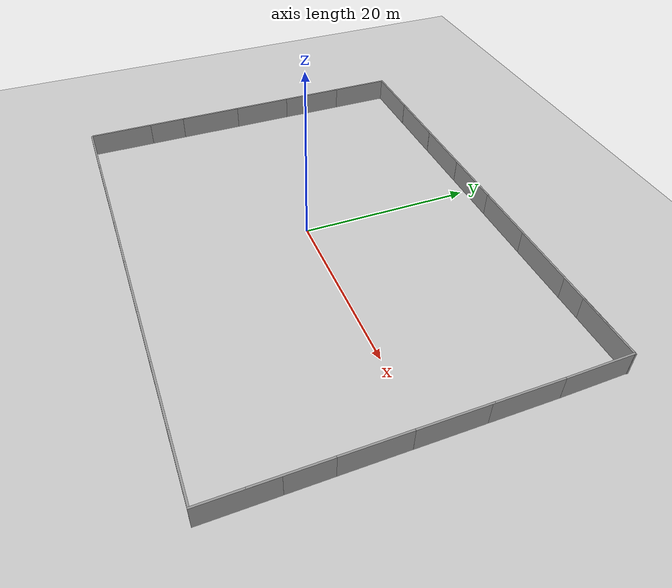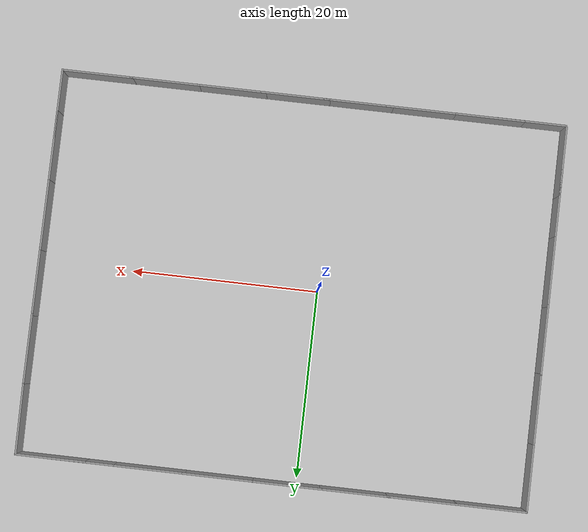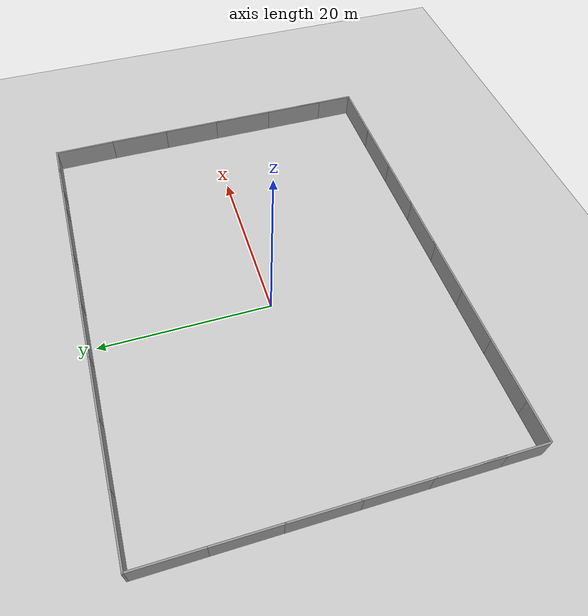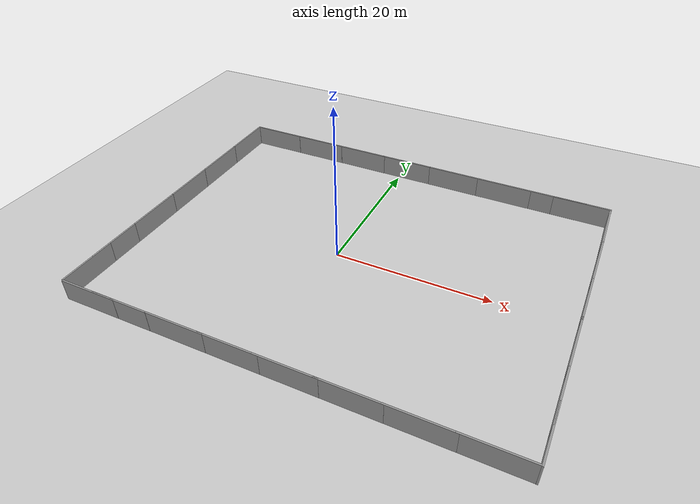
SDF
<sdf version="1.6">
 <world name="default">
  <light name="sun" type="directional">
   <pose>0 0 10 0 -0 0</pose>
   <diffuse>0.8 0.8 0.8 1</diffuse>
   <specular>0.2 0.2 0.2 1</specular>
   <attenuation>
    <range>1000</range>
    <constant>0.9</constant>
    <linear>0.01</linear>
    <quadratic>0.001</quadratic>
   </attenuation>
   <direction>-0.5 0.1 -0.9</direction>
  </light>
  <model name="ground_plane">
   <static>1</static>
   <link name="link">
    <collision name="collision">
     <geometry><plane><normal>0 0 1</normal><size>57 45</size></plane></geometry>
     <surface><friction><ode><mu>100</mu><mu2>50</mu2></ode></friction></surface>
    </collision>
    <visual name="visual">
     <cast_shadows>0</cast_shadows>
     <geometry><plane><normal>0 0 1</normal><size>57 45</size></plane></geometry>
     <material>
      <script><uri>file://media/materials/scripts/gazebo.material</uri><name>Gazebo/Grey</name></script>
     </material>
    </visual>
   </link>
  </model>
  <gravity>0 0 -9.8</gravity>
  <magnetic_field>6e-06 2.3e-05 -4.2e-05</magnetic_field>
  <atmosphere type="adiabatic"/>
  <physics name="default_physics" default="0" type="ode">
   <max_step_size>0.001</max_step_size>
   <real_time_factor>1</real_time_factor>
   <real_time_update_rate>1000</real_time_update_rate>
  </physics>
  <scene><ambient>0.4 0.4 0.4 1</ambient><background>0.7 0.7 0.7 1</background><shadows>1</shadows></scene>
  <audio><device>default</device></audio>
  <spherical_coordinates>
   <surface_model>EARTH_WGS84</surface_model>
   <latitude_deg>0</latitude_deg>
   <longitude_deg>0</longitude_deg>
   <elevation>0</elevation>
   <heading_deg>0</heading_deg>
  </spherical_coordinates>
  <model name="grey_wall_clone_5_clone_10_clone_clone">
   <static>1</static>
   <link name="link">
    <pose>0 0 1.4 0 -0 0</pose>
    <collision name="collision"><geometry><box><size>7.5 0.2 2.8</size></box></geometry></collision>
    <visual name="visual">
     <cast_shadows>0</cast_shadows>
     <geometry><box><size>7.5 0.2 2.8</size></box></geometry>
     <material>
      <script>
       <uri>model://grey_wall/materials/scripts</uri>
       <uri>model://grey_wall/materials/textures</uri>
       <name>vrc/grey_wall</name>
      </script>
     </material>
    </visual>
   </link>
   <pose>29.6385 16.8823 0 0 0 -1.55831</pose>
  </model>
  <model name="grey_wall_clone_2_clone_0_clone_7_clone">
   <static>1</static>
   <link name="link">
    <pose>0 0 1.4 0 -0 0</pose>
    <collision name="collision"><geometry><box><size>7.5 0.2 2.8</size></box></geometry></collision>
    <visual name="visual">
     <cast_shadows>0</cast_shadows>
     <geometry><box><size>7.5 0.2 2.8</size></box></geometry>
     <material>
      <script>
       <uri>model://grey_wall/materials/scripts</uri>
       <uri>model://grey_wall/materials/textures</uri>
       <name>vrc/grey_wall</name>
      </script>
     </material>
    </visual>
   </link>
   <pose>-24.3511 16.9559 0 0 0 -1.57184</pose>
  </model>
  <model name="grey_wall_clone_2_clone_0_clone_7_clone_clone">
   <static>1</static>
   <link name="link">
    <pose>0 0 1.4 0 -0 0</pose>
    <collision name="collision"><geometry><box><size>7.5 0.2 2.8</size></box></geometry></collision>
    <visual name="visual">
     <cast_shadows>0</cast_shadows>
     <geometry><box><size>7.5 0.2 2.8</size></box></geometry>
     <material>
      <script>
       <uri>model://grey_wall/materials/scripts</uri>
       <uri>model://grey_wall/materials/textures</uri>
       <name>vrc/grey_wall</name>
      </script>
     </material>
    </visual>
   </link>
   <pose>-24.3554 9.76054 0 0 0 -1.57184</pose>
  </model>
  <model name="grey_wall_clone_2_clone_0_clone_7_clone_clone_0">
   <static>1</static>
   <link name="link">
    <pose>0 0 1.4 0 -0 0</pose>
    <collision name="collision"><geometry><box><size>7.5 0.2 2.8</size></box></geometry></collision>
    <visual name="visual">
     <cast_shadows>0</cast_shadows>
     <geometry><box><size>7.5 0.2 2.8</size></box></geometry>
     <material>
      <script>
       <uri>model://grey_wall/materials/scripts</uri>
       <uri>model://grey_wall/materials/textures</uri>
       <name>vrc/grey_wall</name>
      </script>
     </material>
    </visual>
   </link>
   <pose>-24.3635 2.44672 0 0 0 -1.57184</pose>
  </model>
  <model name="grey_wall_clone_2_clone_0_clone_7_clone_clone_1">
   <static>1</static>
   <link name="link">
    <pose>0 0 1.4 0 -0 0</pose>
    <collision name="collision"><geometry><box><size>7.5 0.2 2.8</size></box></geometry></collision>
    <visual name="visual">
     <cast_shadows>0</cast_shadows>
     <geometry><box><size>7.5 0.2 2.8</size></box></geometry>
     <material>
      <script>
       <uri>model://grey_wall/materials/scripts</uri>
       <uri>model://grey_wall/materials/textures</uri>
       <name>vrc/grey_wall</name>
      </script>
     </material>
    </visual>
   </link>
   <pose>-24.3662 -4.79993 0 0 0 -1.57184</pose>
  </model>
  <model name="grey_wall_clone_2_clone_0_clone_7_clone_clone_2">
   <static>1</static>
   <link name="link">
    <pose>0 0 1.4 0 -0 0</pose>
    <collision name="collision"><geometry><box><size>7.5 0.2 2.8</size></box></geometry></collision>
    <visual name="visual">
     <cast_shadows>0</cast_shadows>
     <geometry><box><size>7.5 0.2 2.8</size></box></geometry>
     <material>
      <script>
       <uri>model://grey_wall/materials/scripts</uri>
       <uri>model://grey_wall/materials/textures</uri>
       <name>vrc/grey_wall</name>
      </script>
     </material>
    </visual>
   </link>
   <pose>-24.3746 -12.0057 0 0 0 -1.57184</pose>
  </model>
  <model name="grey_wall_clone_2_clone_0_clone_7_clone_clone_3">
   <static>1</static>
   <link name="link">
    <pose>0 0 1.4 0 -0 0</pose>
    <collision name="collision"><geometry><box><size>7.5 0.2 2.8</size></box></geometry></collision>
    <visual name="visual">
     <cast_shadows>0</cast_shadows>
     <geometry><box><size>7.5 0.2 2.8</size></box></geometry>
     <material>
      <script>
       <uri>model://grey_wall/materials/scripts</uri>
       <uri>model://grey_wall/materials/textures</uri>
       <name>vrc/grey_wall</name>
      </script>
     </material>
    </visual>
   </link>
   <pose>-24.3717 -16.6416 0 0 0 -1.57184</pose>
  </model>
  <model name="grey_wall_clone_0_clone">
   <static>1</static>
   <link name="link">
    <pose>0 0 1.4 0 -0 0</pose>
    <collision name="collision"><geometry><box><size>7.5 0.2 2.8</size></box></geometry></collision>
    <visual name="visual">
     <cast_shadows>0</cast_shadows>
     <geometry><box><size>7.5 0.2 2.8</size></box></geometry>
     <material>
      <script>
       <uri>model://grey_wall/materials/scripts</uri>
       <uri>model://grey_wall/materials/textures</uri>
       <name>vrc/grey_wall</name>
      </script>
     </material>
    </visual>
   </link>
   <pose>-20.7018 20.5969 0 0 -0 0</pose>
  </model>
  <model name="grey_wall_clone_0_clone_0">
   <static>1</static>
   <link name="link">
    <pose>0 0 1.4 0 -0 0</pose>
    <collision name="collision"><geometry><box><size>7.5 0.2 2.8</size></box></geometry></collision>
    <visual name="visual">
     <cast_shadows>0</cast_shadows>
     <geometry><box><size>7.5 0.2 2.8</size></box></geometry>
     <material>
      <script>
       <uri>model://grey_wall/materials/scripts</uri>
       <uri>model://grey_wall/materials/textures</uri>
       <name>vrc/grey_wall</name>
      </script>
     </material>
    </visual>
   </link>
   <pose>-13.3725 20.6072 0 0 -0 0</pose>
  </model>
  <model name="grey_wall_clone_0_clone_1">
   <static>1</static>
   <link name="link">
    <pose>0 0 1.4 0 -0 0</pose>
    <collision name="collision"><geometry><box><size>7.5 0.2 2.8</size></box></geometry></collision>
    <visual name="visual">
     <cast_shadows>0</cast_shadows>
     <geometry><box><size>7.5 0.2 2.8</size></box></geometry>
     <material>
      <script>
       <uri>model://grey_wall/materials/scripts</uri>
       <uri>model://grey_wall/materials/textures</uri>
       <name>vrc/grey_wall</name>
      </script>
     </material>
    </visual>
   </link>
   <pose>-6.28562 20.6188 0 0 -0 0</pose>
  </model>
  <model name="grey_wall_clone_0_clone_2">
   <static>1</static>
   <link name="link">
    <pose>0 0 1.4 0 -0 0</pose>
    <collision name="collision"><geometry><box><size>7.5 0.2 2.8</size></box></geometry></collision>
    <visual name="visual">
     <cast_shadows>0</cast_shadows>
     <geometry><box><size>7.5 0.2 2.8</size></box></geometry>
     <material>
      <script>
       <uri>model://grey_wall/materials/scripts</uri>
       <uri>model://grey_wall/materials/textures</uri>
       <name>vrc/grey_wall</name>
      </script>
     </material>
    </visual>
   </link>
   <pose>0.977817 20.6258 0 0 -0 0</pose>
  </model>
  <model name="grey_wall_clone_0_clone_3">
   <static>1</static>
   <link name="link">
    <pose>0 0 1.4 0 -0 0</pose>
    <collision name="collision"><geometry><box><size>7.5 0.2 2.8</size></box></geometry></collision>
    <visual name="visual">
     <cast_shadows>0</cast_shadows>
     <geometry><box><size>7.5 0.2 2.8</size></box></geometry>
     <material>
      <script>
       <uri>model://grey_wall/materials/scripts</uri>
       <uri>model://grey_wall/materials/textures</uri>
       <name>vrc/grey_wall</name>
      </script>
     </material>
    </visual>
   </link>
   <pose>8.29547 20.619 0 0 -0 0</pose>
  </model>
  <model name="grey_wall_clone_0_clone_4">
   <static>1</static>
   <link name="link">
    <pose>0 0 1.4 0 -0 0</pose>
    <collision name="collision"><geometry><box><size>7.5 0.2 2.8</size></box></geometry></collision>
    <visual name="visual">
     <cast_shadows>0</cast_shadows>
     <geometry><box><size>7.5 0.2 2.8</size></box></geometry>
     <material>
      <script>
       <uri>model://grey_wall/materials/scripts</uri>
       <uri>model://grey_wall/materials/textures</uri>
       <name>vrc/grey_wall</name>
      </script>
     </material>
    </visual>
   </link>
   <pose>15.4428 20.6126 0 0 -0 0</pose>
  </model>
  <model name="grey_wall_clone_0_clone_5">
   <static>1</static>
   <link name="link">
    <pose>0 0 1.4 0 -0 0</pose>
    <collision name="collision"><geometry><box><size>7.5 0.2 2.8</size></box></geometry></collision>
    <visual name="visual">
     <cast_shadows>0</cast_shadows>
     <geometry><box><size>7.5 0.2 2.8</size></box></geometry>
     <material>
      <script>
       <uri>model://grey_wall/materials/scripts</uri>
       <uri>model://grey_wall/materials/textures</uri>
       <name>vrc/grey_wall</name>
      </script>
     </material>
    </visual>
   </link>
   <pose>22.7188 20.6131 0 0 -0 0</pose>
  </model>
  <model name="grey_wall_clone_0_clone_6">
   <static>1</static>
   <link name="link">
    <pose>0 0 1.4 0 -0 0</pose>
    <collision name="collision"><geometry><box><size>7.5 0.2 2.8</size></box></geometry></collision>
    <visual name="visual">
     <cast_shadows>0</cast_shadows>
     <geometry><box><size>7.5 0.2 2.8</size></box></geometry>
     <material>
      <script>
       <uri>model://grey_wall/materials/scripts</uri>
       <uri>model://grey_wall/materials/textures</uri>
       <name>vrc/grey_wall</name>
      </script>
     </material>
    </visual>
   </link>
   <pose>25.977 20.6082 0 0 -0 0</pose>
  </model>
  <model name="grey_wall_clone_2_clone_0_clone_7_clone_0">
   <static>1</static>
   <link name="link">
    <pose>0 0 1.4 0 -0 0</pose>
    <collision name="collision"><geometry><box><size>7.5 0.2 2.8</size></box></geometry></collision>
    <visual name="visual">
     <cast_shadows>0</cast_shadows>
     <geometry><box><size>7.5 0.2 2.8</size></box></geometry>
     <material>
      <script>
       <uri>model://grey_wall/materials/scripts</uri>
       <uri>model://grey_wall/materials/textures</uri>
       <name>vrc/grey_wall</name>
      </script>
     </material>
    </visual>
   </link>
   <pose>29.6798 9.46673 0 0 0 -1.57184</pose>
  </model>
  <model name="grey_wall_clone_2_clone_0_clone_7_clone_1">
   <static>1</static>
   <link name="link">
    <pose>0 0 1.4 0 -0 0</pose>
    <collision name="collision"><geometry><box><size>7.5 0.2 2.8</size></box></geometry></collision>
    <visual name="visual">
     <cast_shadows>0</cast_shadows>
     <geometry><box><size>7.5 0.2 2.8</size></box></geometry>
     <material>
      <script>
       <uri>model://grey_wall/materials/scripts</uri>
       <uri>model://grey_wall/materials/textures</uri>
       <name>vrc/grey_wall</name>
      </script>
     </material>
    </visual>
   </link>
   <pose>29.6717 2.22324 0 0 0 -1.57184</pose>
  </model>
  <model name="grey_wall_clone_2_clone_0_clone_7_clone_2">
   <static>1</static>
   <link name="link">
    <pose>0 0 1.4 0 -0 0</pose>
    <collision name="collision"><geometry><box><size>7.5 0.2 2.8</size></box></geometry></collision>
    <visual name="visual">
     <cast_shadows>0</cast_shadows>
     <geometry><box><size>7.5 0.2 2.8</size></box></geometry>
     <material>
      <script>
       <uri>model://grey_wall/materials/scripts</uri>
       <uri>model://grey_wall/materials/textures</uri>
       <name>vrc/grey_wall</name>
      </script>
     </material>
    </visual>
   </link>
   <pose>29.6568 -4.78831 0 0 0 -1.57184</pose>
  </model>
  <model name="grey_wall_clone_2_clone_0_clone_7_clone_3">
   <static>1</static>
   <link name="link">
    <pose>0 0 1.4 0 -0 0</pose>
    <collision name="collision"><geometry><box><size>7.5 0.2 2.8</size></box></geometry></collision>
    <visual name="visual">
     <cast_shadows>0</cast_shadows>
     <geometry><box><size>7.5 0.2 2.8</size></box></geometry>
     <material>
      <script>
       <uri>model://grey_wall/materials/scripts</uri>
       <uri>model://grey_wall/materials/textures</uri>
       <name>vrc/grey_wall</name>
      </script>
     </material>
    </visual>
   </link>
   <pose>29.6494 -12.2276 0 0 0 -1.57184</pose>
  </model>
  <model name="grey_wall_clone_2_clone_0_clone_7_clone_4">
   <static>1</static>
   <link name="link">
    <pose>0 0 1.4 0 -0 0</pose>
    <collision name="collision"><geometry><box><size>7.5 0.2 2.8</size></box></geometry></collision>
    <visual name="visual">
     <cast_shadows>0</cast_shadows>
     <geometry><box><size>7.5 0.2 2.8</size></box></geometry>
     <material>
      <script>
       <uri>model://grey_wall/materials/scripts</uri>
       <uri>model://grey_wall/materials/textures</uri>
       <name>vrc/grey_wall</name>
      </script>
     </material>
    </visual>
   </link>
   <pose>29.6499 -16.7727 0 0 0 -1.57184</pose>
  </model>
  <model name="grey_wall_clone_0_clone_5_clone">
   <static>1</static>
   <link name="link">
    <pose>0 0 1.4 0 -0 0</pose>
    <collision name="collision"><geometry><box><size>7.5 0.2 2.8</size></box></geometry></collision>
    <visual name="visual">
     <cast_shadows>0</cast_shadows>
     <geometry><box><size>7.5 0.2 2.8</size></box></geometry>
     <material>
      <script>
       <uri>model://grey_wall/materials/scripts</uri>
       <uri>model://grey_wall/materials/textures</uri>
       <name>vrc/grey_wall</name>
      </script>
     </material>
    </visual>
   </link>
   <pose>25.7949 -20.4027 0 0 -0 0</pose>
  </model>
  <model name="grey_wall_clone_0_clone_5_clone_0">
   <static>1</static>
   <link name="link">
    <pose>0 0 1.4 0 -0 0</pose>
    <collision name="collision"><geometry><box><size>7.5 0.2 2.8</size></box></geometry></collision>
    <visual name="visual">
     <cast_shadows>0</cast_shadows>
     <geometry><box><size>7.5 0.2 2.8</size></box></geometry>
     <material>
      <script>
       <uri>model://grey_wall/materials/scripts</uri>
       <uri>model://grey_wall/materials/textures</uri>
       <name>vrc/grey_wall</name>
      </script>
     </material>
    </visual>
   </link>
   <pose>18.6718 -20.4082 0 0 -0 0</pose>
  </model>
  <model name="grey_wall_clone_0_clone_5_clone_1">
   <static>1</static>
   <link name="link">
    <pose>0 0 1.4 0 -0 0</pose>
    <collision name="collision"><geometry><box><size>7.5 0.2 2.8</size></box></geometry></collision>
    <visual name="visual">
     <cast_shadows>0</cast_shadows>
     <geometry><box><size>7.5 0.2 2.8</size></box></geometry>
     <material>
      <script>
       <uri>model://grey_wall/materials/scripts</uri>
       <uri>model://grey_wall/materials/textures</uri>
       <name>vrc/grey_wall</name>
      </script>
     </material>
    </visual>
   </link>
   <pose>11.499 -20.4166 0 0 -0 0</pose>
  </model>
  <model name="grey_wall_clone_0_clone_5_clone_2">
   <static>1</static>
   <link name="link">
    <pose>0 0 1.4 0 -0 0</pose>
    <collision name="collision"><geometry><box><size>7.5 0.2 2.8</size></box></geometry></collision>
    <visual name="visual">
     <cast_shadows>0</cast_shadows>
     <geometry><box><size>7.5 0.2 2.8</size></box></geometry>
     <material>
      <script>
       <uri>model://grey_wall/materials/scripts</uri>
       <uri>model://grey_wall/materials/textures</uri>
       <name>vrc/grey_wall</name>
      </script>
     </material>
    </visual>
   </link>
   <pose>4.64984 -20.4208 0 0 -0 0</pose>
  </model>
  <model name="grey_wall_clone_0_clone_5_clone_3">
   <static>1</static>
   <link name="link">
    <pose>0 0 1.4 0 -0 0</pose>
    <collision name="collision"><geometry><box><size>7.5 0.2 2.8</size></box></geometry></collision>
    <visual name="visual">
     <cast_shadows>0</cast_shadows>
     <geometry><box><size>7.5 0.2 2.8</size></box></geometry>
     <material>
      <script>
       <uri>model://grey_wall/materials/scripts</uri>
       <uri>model://grey_wall/materials/textures</uri>
       <name>vrc/grey_wall</name>
      </script>
     </material>
    </visual>
   </link>
   <pose>-2.12461 -20.4222 0 0 -0 0</pose>
  </model>
  <model name="grey_wall_clone_0_clone_5_clone_4">
   <static>1</static>
   <link name="link">
    <pose>0 0 1.4 0 -0 0</pose>
    <collision name="collision"><geometry><box><size>7.5 0.2 2.8</size></box></geometry></collision>
    <visual name="visual">
     <cast_shadows>0</cast_shadows>
     <geometry><box><size>7.5 0.2 2.8</size></box></geometry>
     <material>
      <script>
       <uri>model://grey_wall/materials/scripts</uri>
       <uri>model://grey_wall/materials/textures</uri>
       <name>vrc/grey_wall</name>
      </script>
     </material>
    </visual>
   </link>
   <pose>-8.79941 -20.425 0 0 -0 0</pose>
  </model>
  <model name="grey_wall_clone_0_clone_5_clone_5">
   <static>1</static>
   <link name="link">
    <pose>0 0 1.4 0 -0 0</pose>
    <collision name="collision"><geometry><box><size>7.5 0.2 2.8</size></box></geometry></collision>
    <visual name="visual">
     <cast_shadows>0</cast_shadows>
     <geometry><box><size>7.5 0.2 2.8</size></box></geometry>
     <material>
      <script>
       <uri>model://grey_wall/materials/scripts</uri>
       <uri>model://grey_wall/materials/textures</uri>
       <name>vrc/grey_wall</name>
      </script>
     </material>
    </visual>
   </link>
   <pose>-16.1715 -20.4348 0 0 -0 0</pose>
  </model>
  <model name="grey_wall_clone_0_clone_5_clone_6">
   <static>1</static>
   <link name="link">
    <pose>0 0 1.4 0 -0 0</pose>
    <collision name="collision"><geometry><box><size>7.5 0.2 2.8</size></box></geometry></collision>
    <visual name="visual">
     <cast_shadows>0</cast_shadows>
     <geometry><box><size>7.5 0.2 2.8</size></box></geometry>
     <material>
      <script>
       <uri>model://grey_wall/materials/scripts</uri>
       <uri>model://grey_wall/materials/textures</uri>
       <name>vrc/grey_wall</name>
      </script>
     </material>
    </visual>
   </link>
   <pose>-20.6296 -20.4446 0 0 -0 0</pose>
  </model>
 </world>
</sdf>
